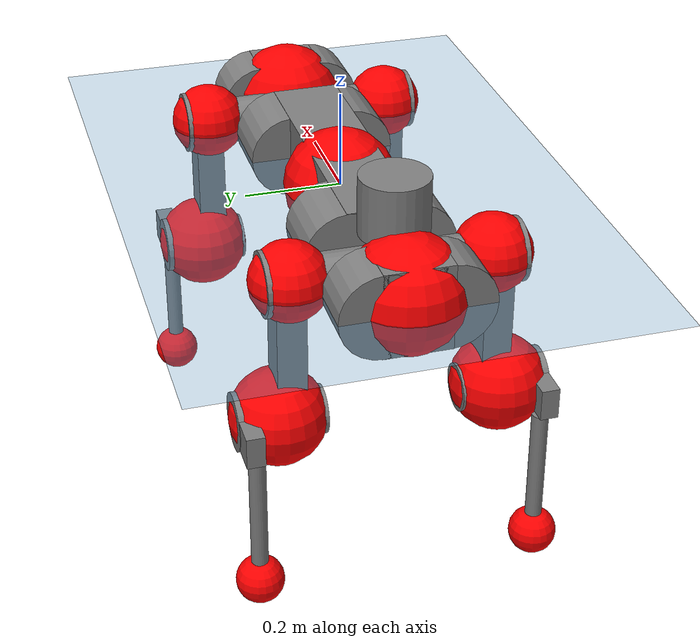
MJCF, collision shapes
<mujoco model="anymal_c">
  <compiler angle="radian" assetdir="assets" balanceinertia="true" inertiafromgeom="false"/>

  <option timestep="0.005" density="1.2" viscosity="2e-05"/>

  <size nkey="1"/>

  <visual>
    <quality shadowsize="8192"/>
    <map shadowclip="0.5"/>
  </visual>

  <default>
    <default class="/">
      <material specular="0" shininess="0.25"/>
      <geom contype="0" conaffinity="0" group="1" solref="-1000 -80"/>
      <site size="0.01 0.005 0.005" group="5"/>
      <general forcelimited="true" forcerange="-80 80" biastype="affine" gainprm="80" biasprm="0 -80 -2"/>
      <default class="anymal_c">
        <joint armature="0.01" damping="0.01" frictionloss="0.1"/>
        <default class="visual">
          <geom type="mesh" group="2"/>
          <default class="visual_zflip"/>
        </default>
        <default class="collision">
          <geom type="cylinder" group="3"/>
          <default class="foot">
            <geom size="0.03 0 0" type="sphere" condim="6" priority="1" friction="0.8 0.02 0.01" solimp="0.015 1 0.03"/>
          </default>
        </default>
      </default>
      <default class="reward_collision_sphere">
        <geom group="5" rgba="1 0 0 1"/>
      </default>
    </default>
  </default>

  <asset>
    <texture type="skybox" colorspace="auto" name="//unnamed_texture_0" builtin="gradient" rgb1="0.95 0.95 0.95" rgb2="0.95 0.95 0.95" width="100" height="600"/>
    <texture type="2d" colorspace="auto" name="texplane" builtin="checker" rgb1="0.345 0.575 0.748" rgb2="0.345 0.575 0.748" markrgb="1 1 1" width="512" height="512"/>
    <texture type="2d" colorspace="linear" name="base" file="base.png"/>
    <texture type="2d" colorspace="linear" name="top_shell" file="top_shell.png"/>
    <texture type="2d" colorspace="linear" name="bottom_shell" file="bottom_shell.png"/>
    <texture type="2d" colorspace="linear" name="remote" file="remote.png"/>
    <texture type="2d" colorspace="linear" name="hatch" file="hatch.png"/>
    <texture type="2d" colorspace="linear" name="handle" file="handle.png"/>
    <texture type="2d" colorspace="linear" name="face" file="face.png"/>
    <texture type="2d" colorspace="linear" name="battery" file="battery.png"/>
    <texture type="2d" colorspace="linear" name="lidar_cage" file="lidar_cage.png"/>
    <texture type="2d" colorspace="linear" name="depth_camera" file="depth_camera.png"/>
    <texture type="2d" colorspace="linear" name="wide_angle_camera" file="wide_angle_camera.png"/>
    <texture type="2d" colorspace="linear" name="lidar" file="lidar.png"/>
    <texture type="2d" colorspace="linear" name="drive" file="drive.png"/>
    <texture type="2d" colorspace="linear" name="hip_l" file="hip_l.png"/>
    <texture type="2d" colorspace="linear" name="shank_l" file="shank_l.png"/>
    <texture type="2d" colorspace="linear" name="foot" file="foot.png"/>
    <texture type="2d" colorspace="linear" name="thigh" file="thigh.png"/>
    <texture type="2d" colorspace="linear" name="shank_r" file="shank_r.png"/>
    <texture type="2d" colorspace="linear" name="hip_r" file="hip_r.png"/>
    <material name="MatPlane" class="/" texture="texplane" texuniform="true" texrepeat="2 2" specular="0.9" shininess="0.5"/>
    <material name="black_plastic" class="/" rgba="0.007 0.007 0.007 1"/>
    <material name="green" class="/" rgba="0.052 0.178 0.033 1"/>
    <material name="red" class="/" rgba="0.178 0.006 0.005 1"/>
    <material name="yellow" class="/" rgba="0.178 0.119 0.006 1"/>
    <material name="lwl" class="/" rgba="0.8 0.8 0.8 1"/>
    <material name="base" class="/" texture="base"/>
    <material name="top_shell" class="/" texture="top_shell"/>
    <material name="bottom_shell" class="/" texture="bottom_shell"/>
    <material name="hip_l" class="/" texture="hip_l"/>
    <material name="thigh" class="/" texture="thigh"/>
    <material name="shank_l" class="/" texture="shank_l"/>
    <material name="foot" class="/" texture="foot"/>
    <material name="hip_r" class="/" texture="hip_r"/>
    <material name="shank" class="/" texture="shank_r"/>
    <material name="hatch" class="/" texture="hatch"/>
    <material name="remote" class="/" texture="remote"/>
    <material name="handle" class="/" texture="handle"/>
    <material name="face" class="/" texture="face"/>
    <material name="depth_camera" class="/" texture="depth_camera"/>
    <material name="wide_angle_camera" class="/" texture="wide_angle_camera"/>
    <material name="battery" class="/" texture="battery"/>
    <material name="lidar_cage" class="/" texture="lidar_cage"/>
    <material name="lidar" class="/" texture="lidar"/>
    <material name="drive" class="/" texture="drive"/>
    <mesh name="base_0" class="/" file="base_0.obj"/>
    <mesh name="base_1" class="/" file="base_1.obj"/>
    <mesh name="base_2" class="/" file="base_2.obj"/>
    <mesh name="base_3" class="/" file="base_3.obj"/>
    <mesh name="base_4" class="/" file="base_4.obj"/>
    <mesh name="base_5" class="/" file="base_5.obj"/>
    <mesh name="top_shell" class="/" file="top_shell.obj"/>
    <mesh name="bottom_shell" class="/" file="bottom_shell.obj"/>
    <mesh name="remote" class="/" file="remote.obj"/>
    <mesh name="handle" class="/" file="handle.obj"/>
    <mesh name="face" class="/" file="face.obj"/>
    <mesh name="wide_angle_camera" class="/" file="wide_angle_camera.obj"/>
    <mesh name="depth_camera" class="/" file="depth_camera.obj"/>
    <mesh name="battery" class="/" file="battery.obj"/>
    <mesh name="lidar_cage" class="/" file="lidar_cage.obj"/>
    <mesh name="lidar" class="/" file="lidar.obj"/>
    <mesh name="drive" class="/" file="drive.obj"/>
    <mesh name="hip_l" class="/" file="hip_l.obj"/>
    <mesh name="thigh" class="/" file="thigh.obj"/>
    <mesh name="shank_l" class="/" file="shank_l.obj"/>
    <mesh name="foot" class="/" file="foot.obj"/>
    <mesh name="hip_r" class="/" file="hip_r.obj"/>
    <mesh name="hatch" class="/" file="hatch.obj"/>
    <mesh name="shank_r" class="/" file="shank_r.obj"/>
  </asset>

  <worldbody>
    <geom name="floor" class="/" size="100 100 0.125" type="plane" group="0" material="MatPlane"/>
    <light name="toplight_shadow" class="/" pos="0 0 5" dir="0.0990148 0.0990148 -0.990148" type="directional" ambient="0.04 0.04 0.04" diffuse="0.55 0.55 0.55" specular="0.12 0.12 0.12"/>
    <light name="toplight_fill" class="/" pos="0 0 5" dir="0.0990148 0.0990148 -0.990148" type="directional" castshadow="false" ambient="0.04 0.04 0.04" diffuse="0.3 0.3 0.3" specular="0.08 0.08 0.08"/>
    <body name="trunk" childclass="anymal_c" pos="0.000317009 -0.000417562 0.00100175" quat="1 0.00014211 -5.80016e-05 0.000164284">
      <inertial pos="0.00242465 -0.00244208 0.0517893" quat="0.500541 0.499482 0.499329 0.500646" mass="17.7908" diaginertia="0.570285 0.372825 0.275632"/>
      <joint name="//unnamed_joint_0" type="free" armature="0" damping="0" frictionloss="0"/>
      <geom name="//unnamed_geom_1" class="visual" material="green" mesh="base_0"/>
      <geom name="//unnamed_geom_2" class="visual" material="yellow" mesh="base_1"/>
      <geom name="//unnamed_geom_3" class="visual" material="red" mesh="base_2"/>
      <geom name="//unnamed_geom_4" class="visual" material="black_plastic" mesh="base_3"/>
      <geom name="//unnamed_geom_5" class="visual" material="lwl" mesh="base_4"/>
      <geom name="//unnamed_geom_6" class="visual" material="base" mesh="base_5"/>
      <geom name="trunk_1" class="collision" size="0.285243 0.0688517 0.0885236" type="box"/>
      <geom name="trunk_2" class="collision" size="0.0885236 0.0713107" pos="0.215188 0.063667 0" quat="0.707107 0 0.707107 0"/>
      <geom name="trunk_3" class="collision" size="0.0885236 0.0713107" pos="-0.215188 0.063667 0" quat="0.707107 0 0.707107 0"/>
      <geom name="trunk_4" class="collision" size="0.0885236 0.0713107" pos="0.215188 -0.063667 0" quat="0.707107 0 0.707107 0"/>
      <geom name="trunk_5" class="collision" size="0.0885236 0.0713107" pos="-0.215188 -0.063667 0" quat="0.707107 0 0.707107 0"/>
      <geom name="//unnamed_geom_12" class="visual" material="top_shell" mesh="top_shell"/>
      <geom name="//unnamed_geom_13" class="visual" material="bottom_shell" mesh="bottom_shell"/>
      <geom name="//unnamed_geom_14" class="visual" material="remote" mesh="remote"/>
      <geom name="//unnamed_geom_15" class="visual" material="handle" mesh="handle"/>
      <geom name="//unnamed_geom_16" class="visual" pos="0.410093 0 0" quat="1 0 0 0" material="face" mesh="face"/>
      <geom name="trunk_6" class="collision" size="0.0540977 0.0688517 0.0885236" pos="0.464509 0 0" type="box"/>
      <geom name="//unnamed_geom_18" class="collision" size="0.0885236 0.0540977" pos="0.464509 0.063667 0" quat="0.707107 0 0.707107 0"/>
      <geom name="//unnamed_geom_19" class="collision" size="0.0885236 0.0540977" pos="0.464509 -0.063667 0" quat="0.707107 0 0.707107 0"/>
      <geom name="//unnamed_geom_20" class="visual" pos="0.456745 0 -0.0311903" quat="0.965926 0 0.258819 0" material="depth_camera" mesh="depth_camera"/>
      <geom name="//unnamed_geom_21" class="visual" pos="0.507546 0 0.0157468" material="wide_angle_camera" mesh="wide_angle_camera"/>
      <geom name="//unnamed_geom_22" class="visual_zflip" pos="-0.410093 0 0" quat="0 0 0 1" material="face" mesh="face"/>
      <geom name="trunk_7" class="collision" size="0.0540977 0.0688517 0.0885236" pos="-0.464509 0 0" quat="0 0 0 1" type="box"/>
      <geom name="//unnamed_geom_24" class="collision" size="0.0885236 0.0540977" pos="-0.464509 -0.063667 0" quat="0 -0.707107 0 0.707107"/>
      <geom name="//unnamed_geom_25" class="collision" size="0.0885236 0.0540977" pos="-0.464509 0.063667 0" quat="0 -0.707107 0 0.707107"/>
      <geom name="//unnamed_geom_26" class="visual" pos="-0.456745 0 -0.0311903" quat="0 -0.258819 0 0.965926" material="depth_camera" mesh="depth_camera"/>
      <geom name="//unnamed_geom_27" class="visual_zflip" pos="-0.507546 0 0.0157468" quat="0 0 0 1" material="wide_angle_camera" mesh="wide_angle_camera"/>
      <geom name="//unnamed_geom_28" class="visual" material="battery" mesh="battery"/>
      <geom name="//unnamed_geom_29" class="visual" pos="0 0.0684975 0.0300822" quat="0.683013 -0.183013 0.183013 0.683013" material="depth_camera" mesh="depth_camera"/>
      <geom name="//unnamed_geom_30" class="visual" pos="0 -0.0684975 0.0300822" quat="0.683013 0.183013 0.183013 -0.683013" material="depth_camera" mesh="depth_camera"/>
      <geom name="//unnamed_geom_31" class="visual" pos="-0.36013 0 0.0773138" quat="1 0 0 0" material="lidar_cage" mesh="lidar_cage"/>
      <geom name="trunk_8" class="collision" size="0.0688517 0.0590157" pos="-0.36013 0 0.140427"/>
      <geom name="//unnamed_geom_33" class="visual" pos="-0.36013 -3.1367e-05 0.149579" quat="0.707107 0 0 -0.707107" material="lidar" mesh="lidar"/>
      <geom name="//unnamed_geom_34" class="visual" pos="0.296712 0.0946415 -2.45573e-09" quat="0.258819 0.965926 0 0" material="drive" mesh="drive"/>
      <geom name="//unnamed_geom_35" class="visual" pos="0.296712 -0.0946415 2.45573e-09" quat="0.258819 -0.965926 0 0" material="drive" mesh="drive"/>
      <geom name="//unnamed_geom_36" class="visual" pos="-0.296712 0.0946415 2.45573e-09" quat="0 0 0.965926 -0.258819" material="drive" mesh="drive"/>
      <geom name="//unnamed_geom_37" class="visual" pos="-0.296712 -0.0946415 -2.45573e-09" quat="0 0 -0.965926 -0.258819" material="drive" mesh="drive"/>
      <geom name="//unnamed_geom_38" class="visual" pos="0.114767 0 0.0767879" quat="1 0 0 0" material="hatch" mesh="hatch"/>
      <geom name="//unnamed_geom_39" class="reward_collision_sphere" size="0.118031"/>
      <geom name="//unnamed_geom_40" class="reward_collision_sphere" size="0.118031" pos="0.445216 0 0"/>
      <geom name="//unnamed_geom_41" class="reward_collision_sphere" size="0.118031" pos="-0.445216 0 0"/>
      <site name="imu" pos="0.24361 0.00975485 0.0507978" size="0.00983595"/>
      <camera name="track" pos="0 -1.81906 0" quat="0.707107 0.707107 0 0" mode="trackcom"/>
      <camera name="ego_camera" pos="0.445216 0 -0.0420755" quat="-0.5 -0.5 0.5 0.5"/>
      <body name="LF_HIP" pos="0.297617 0.0949196 -0.000496417" quat="0.259086 0.965854 9.30517e-05 2.28147e-05">
        <inertial pos="0.0560514 -0.0149523 -0.00848545" quat="-0.12296 0.704505 -0.144427 0.683882" mass="2.62734" diaginertia="0.00548723 0.00307305 0.00419783"/>
        <joint name="LF_HAA" pos="0 0 0" axis="0.999996 -0.00288681 -0.000114609" range="-0.70887 0.495658" armature="0.00956429" damping="0.0120825" frictionloss="0.099818"/>
        <geom name="//unnamed_geom_42" class="visual" pos="0 -0.000144459 2.37273e-05" quat="0.258819 -0.965926 0 0" material="hip_l" mesh="hip_l"/>
        <geom name="//unnamed_geom_43" class="visual" pos="0.0592632 -0.0708093 -0.0419347" quat="0.183013 -0.683013 0.683013 0.183013" material="drive" mesh="drive"/>
        <geom name="//unnamed_geom_44" class="collision" size="0.0491798 0.0688517" pos="0.0592632 -0.0108778 -0.00726329" quat="-0.353553 -0.612372 0.612372 -0.353553"/>
        <body name="LF_THIGH" pos="0.0610765 -0.0670942 -0.0456471" quat="0.183902 -0.683348 0.682373 0.183254">
          <inertial pos="0.0310017 0.00251762 -0.258354" quat="0.992905 -0.00612025 -0.0790267 0.0886372" mass="2.89542" diaginertia="0.0279187 0.0190782 0.00536238"/>
          <joint name="LF_HFE" pos="0 0 0" axis="0.99999 0.0042362 -0.00126052" range="-3.15657 3.09577" armature="0.0110266" damping="0.00941464" frictionloss="0.0998136"/>
          <geom name="//unnamed_geom_45" class="visual" pos="0.0015885 2.50311e-06 0" quat="0.707107 0 0 -0.707107" material="thigh" mesh="thigh"/>
          <geom name="//unnamed_geom_46" class="collision" size="0.0639337 0.0393438" pos="0.0395747 0 0" quat="0.5 0.5 -0.5 -0.5"/>
          <geom name="//unnamed_geom_47" class="collision" size="0.0368848 0.0295079 0.138996" pos="0.0296811 0 -0.148647" quat="0.707107 0 0 -0.707107" type="box"/>
          <geom name="//unnamed_geom_48" class="visual" pos="0.0992337 0 -0.299788" quat="1 0 0 0" material="drive" mesh="drive"/>
          <geom name="//unnamed_geom_49" class="collision" size="0.0491798 0.0688517" pos="0.0299779 0 -0.299788" quat="0.707107 0 0.707107 0"/>
          <geom name="//unnamed_geom_50" class="reward_collision_sphere" size="0.0786876" pos="0.0247342 0 0"/>
          <body name="LF_SHANK" pos="0.0995042 -0.000269649 -0.299229" quat="1 -0.000246886 0.000220998 9.92574e-05">
            <inertial pos="0.00352111 -0.0557798 -0.0862468" quat="0.992665 -0.118851 0.0015192 -0.0220901" mass="0.551473" diaginertia="0.0095968 0.00588798 0.00142908"/>
            <joint name="LF_KFE" pos="0 0 0" axis="0.999999 0.00159265 0.000515945" range="-3.09162 3.1638" armature="0.0100198" damping="0" frictionloss="0.093293"/>
            <geom name="//unnamed_geom_51" class="visual" pos="0.000517977 0.00276188 0" quat="0.707107 0 0 -0.707107" material="shank_l" mesh="shank_l"/>
            <geom name="LF_kfe_act" class="collision" size="0.0590157 0.0196719" pos="0.0197874 0 0" quat="0.5 0.5 -0.5 -0.5"/>
            <geom name="//unnamed_geom_53" class="collision" size="0.0565557 0.0331963 0.0186883" pos="0.0197874 -0.052297 0" quat="0.5 0.5 -0.5 -0.5" type="box"/>
            <geom name="//unnamed_geom_54" class="visual" pos="0.0129111 -0.079103 -0.355507" quat="0.382683 0 0 -0.92388" material="foot" mesh="foot"/>
            <geom name="LF_calf" class="collision" size="0.0172129 0.138935" pos="0.0129113 -0.079993 -0.177753" quat="0.707107 0 0 -0.707107"/>
            <geom name="LF_foot" class="foot" size="0.0305572" pos="0.0129113 -0.079993 -0.331839" quat="0.707107 0 0 -0.707107"/>
            <geom name="//unnamed_geom_57" class="reward_collision_sphere" size="0.0983595" pos="-0.0494684 0 0"/>
            <geom name="//unnamed_geom_58" class="reward_collision_sphere" size="0.0491798" pos="0.0129113 -0.079993 -0.331839"/>
            <site name="LF_foot" class="foot" pos="0.0129113 -0.079993 -0.331839" quat="0.707107 0 0 -0.707107" size="0.00983595"/>
          </body>
        </body>
      </body>
      <body name="RF_HIP" pos="0.294884 -0.0942243 -0.00247014" quat="0.258735 -0.965948 0.000355369 -0.000349491">
        <inertial pos="0.0559028 0.0133071 -0.00808174" quat="0.141406 0.683831 0.125165 0.704779" mass="2.66987" diaginertia="0.00548722 0.00305964 0.00416796"/>
        <joint name="RF_HAA" pos="0 0 0" axis="1 0.000311073 -0.000716634" range="-0.482185 0.757605" armature="0.0102598" damping="0.0138059" frictionloss="0.0937869"/>
        <geom name="//unnamed_geom_59" class="visual" pos="0 0.000144458 2.37273e-05" quat="0.258819 0.965926 0 0" material="hip_r" mesh="hip_r"/>
        <geom name="//unnamed_geom_60" class="visual" pos="0.0592632 0.0708093 -0.0419347" quat="0.183013 0.683013 0.683013 -0.183013" material="drive" mesh="drive"/>
        <geom name="//unnamed_geom_61" class="collision" size="0.0491798 0.0688517" pos="0.0592632 0.0108778 -0.00726329" quat="-0.353553 0.612372 0.612372 0.353553"/>
        <body name="RF_THIGH" pos="0.0605103 0.0679768 -0.046488" quat="0.182983 0.682999 0.683036 -0.183008">
          <inertial pos="0.0300662 -0.000393071 -0.256028" quat="0.993214 -0.00671228 -0.080372 0.0837916" mass="2.88226" diaginertia="0.0284754 0.0185707 0.00537997"/>
          <joint name="RF_HFE" pos="0 0 0" axis="0.999986 -0.0024855 0.00461361" stiffness="0.0145143" range="-3.13853 3.11835" armature="0.00896735" damping="0.0188257" frictionloss="0.0978643"/>
          <geom name="//unnamed_geom_62" class="visual" pos="0.0015885 2.50311e-06 0" quat="0.707107 0 0 -0.707107" material="thigh" mesh="thigh"/>
          <geom name="//unnamed_geom_63" class="collision" size="0.0639337 0.0393438" pos="0.0395747 0 0" quat="0.5 0.5 0.5 0.5"/>
          <geom name="//unnamed_geom_64" class="collision" size="0.0368848 0.0295079 0.138996" pos="0.0296811 0 -0.148647" quat="0.707107 0 0 0.707107" type="box"/>
          <geom name="//unnamed_geom_65" class="visual" pos="0.0992337 0 -0.299788" quat="1 0 0 0" material="drive" mesh="drive"/>
          <geom name="//unnamed_geom_66" class="collision" size="0.0491798 0.0688517" pos="0.0299779 0 -0.299788" quat="0.707107 0 0.707107 0"/>
          <geom name="//unnamed_geom_67" class="reward_collision_sphere" size="0.0786876" pos="0.0247342 0 0"/>
          <body name="RF_SHANK" pos="0.10051 -0.000772473 -0.297743" quat="1 0.000189454 6.67523e-05 -0.000127302">
            <inertial pos="0.00557793 0.0561252 -0.084413" quat="0.993023 0.114129 -0.000918217 0.0296485" mass="0.577282" diaginertia="0.0100473 0.0059728 0.00148462"/>
            <joint name="RF_KFE" pos="0 0 0" axis="0.999997 -0.00166479 0.00161441" range="-3.15548 3.11992" armature="0.00981934" damping="0" frictionloss="0.103395"/>
            <geom name="//unnamed_geom_68" class="visual" pos="0.000517974 -0.00276187 0" quat="0.707107 0 0 0.707107" material="shank" mesh="shank_r"/>
            <geom name="RF_kfe_act" class="collision" size="0.0590157 0.0196719" pos="0.0197874 0 0" quat="0.5 0.5 0.5 0.5"/>
            <geom name="//unnamed_geom_70" class="collision" size="0.0565557 0.0331963 0.0186883" pos="0.0197874 0.052297 0" quat="0.5 0.5 0.5 0.5" type="box"/>
            <geom name="//unnamed_geom_71" class="visual" pos="0.0129114 0.079103 -0.355507" quat="0.382683 0 0 0.92388" material="foot" mesh="foot"/>
            <geom name="RF_calf" class="collision" size="0.0172129 0.138935" pos="0.0129113 0.079993 -0.177753" quat="0.707107 0 0 0.707107"/>
            <geom name="RF_foot" class="foot" size="0.0264864" pos="0.0129113 0.079993 -0.331839" quat="0.707107 0 0 0.707107"/>
            <geom name="//unnamed_geom_74" class="reward_collision_sphere" size="0.0983595" pos="-0.0494684 0 0"/>
            <geom name="//unnamed_geom_75" class="reward_collision_sphere" size="0.0491798" pos="0.0129113 0.079993 -0.331839"/>
            <site name="RF_foot" class="foot" pos="0.0129113 0.079993 -0.331839" quat="0.707107 0 0 0.707107" size="0.00983595"/>
          </body>
        </body>
      </body>
      <body name="LH_HIP" pos="-0.296295 0.0944087 0.00100364" quat="-0.000134437 0.000128016 0.966018 -0.258473">
        <inertial pos="0.0558319 0.014406 -0.00878623" quat="0.133433 0.681029 0.128795 0.708384" mass="2.59642" diaginertia="0.00564635 0.00312343 0.00427776"/>
        <joint name="LH_HAA" pos="0 0 0" axis="0.999981 0.00465904 0.00401108" range="-0.463639 0.743305" armature="0.0101101" damping="0.0100567" frictionloss="0.103815"/>
        <geom name="//unnamed_geom_76" class="visual" pos="0 0.000144458 2.37273e-05" quat="-0.258819 -0.965926 0 0" material="hip_r" mesh="hip_r"/>
        <geom name="//unnamed_geom_77" class="visual" pos="0.0592632 0.0708093 -0.0419347" quat="0.183013 0.683013 0.683013 -0.183013" material="drive" mesh="drive"/>
        <geom name="//unnamed_geom_78" class="collision" size="0.0491798 0.0688517" pos="0.0592632 0.0108778 -0.00726329" quat="-0.353553 0.612372 0.612372 0.353553"/>
        <body name="LH_THIGH" pos="0.05869 0.0673501 -0.043939" quat="0.183758 0.682591 0.68346 -0.182169">
          <inertial pos="0.0307152 0.0024167 -0.259326" quat="0.992975 -0.006514 -0.0829956 0.0840809" mass="2.84191" diaginertia="0.0288489 0.0185903 0.00552383"/>
          <joint name="LH_HFE" pos="0 0 0" axis="0.999924 0.00977908 -0.00746796" stiffness="0.000392301" range="-3.14691 3.13407" armature="0.00998545" damping="0.014149" frictionloss="0.0996504"/>
          <geom name="//unnamed_geom_79" class="visual" pos="0.0015885 2.50311e-06 0" quat="0.707107 0 0 -0.707107" material="thigh" mesh="thigh"/>
          <geom name="//unnamed_geom_80" class="collision" size="0.0639337 0.0393438" pos="0.0395747 0 0" quat="0.5 0.5 -0.5 -0.5"/>
          <geom name="//unnamed_geom_81" class="collision" size="0.0368848 0.0295079 0.138996" pos="0.0296811 0 -0.148647" quat="0.707107 0 0 -0.707107" type="box"/>
          <geom name="//unnamed_geom_82" class="visual" pos="0.0992337 0 -0.299788" quat="1 0 0 0" material="drive" mesh="drive"/>
          <geom name="//unnamed_geom_83" class="collision" size="0.0491798 0.0688517" pos="0.0299779 0 -0.299788" quat="0.707107 0 0.707107 0"/>
          <geom name="//unnamed_geom_84" class="reward_collision_sphere" size="0.0786876" pos="0.0247342 0 0"/>
          <body name="LH_SHANK" pos="0.100021 -0.00164216 -0.300219" quat="1 0.000352098 -0.000181054 0.000247822">
            <inertial pos="0.00524813 0.0570047 -0.085392" quat="0.992907 0.115597 -0.00195231 0.0277467" mass="0.566731" diaginertia="0.00954353 0.00568659 0.00142021"/>
            <joint name="LH_KFE" pos="0 0 0" axis="1 -0.000330949 -0.000899339" stiffness="0.00113948" range="-3.09786 3.14041" armature="0.0110295" damping="0.0122789" frictionloss="0.097165"/>
            <geom name="//unnamed_geom_85" class="visual" pos="0.000517974 -0.00276187 0" quat="-0.707107 0 0 -0.707107" material="shank" mesh="shank_r"/>
            <geom name="LH_kfe_act" class="collision" size="0.0590157 0.0196719" pos="0.0197874 0 0" quat="0.5 0.5 -0.5 -0.5"/>
            <geom name="//unnamed_geom_87" class="collision" size="0.0565557 0.0331963 0.0186883" pos="0.0197874 0.052297 0" quat="0.5 0.5 -0.5 -0.5" type="box"/>
            <geom name="//unnamed_geom_88" class="visual" pos="0.0129114 0.079103 -0.355507" quat="-0.382683 0 0 -0.92388" material="foot" mesh="foot"/>
            <geom name="LH_calf" class="collision" size="0.0172129 0.138935" pos="0.0129113 0.079993 -0.177753" quat="0.707107 0 0 -0.707107"/>
            <geom name="LH_foot" class="foot" size="0.0303386" pos="0.0129113 0.079993 -0.331839" quat="0.707107 0 0 -0.707107"/>
            <geom name="//unnamed_geom_91" class="reward_collision_sphere" size="0.0983595" pos="-0.0494684 0 0"/>
            <geom name="//unnamed_geom_92" class="reward_collision_sphere" size="0.0491798" pos="0.0129113 0.079993 -0.331839"/>
            <site name="LH_foot" class="foot" pos="0.0129113 0.079993 -0.331839" quat="0.707107 0 0 -0.707107" size="0.00983595"/>
          </body>
        </body>
      </body>
      <body name="RH_HIP" pos="-0.299008 -0.0956981 2.53978e-05" quat="0.00062341 -0.000214803 -0.96624 -0.257643">
        <inertial pos="0.0564737 -0.0130474 -0.00899117" quat="-0.127513 0.709092 -0.136532 0.679917" mass="2.66927" diaginertia="0.00560053 0.00304481 0.00440142"/>
        <joint name="RH_HAA" pos="0 0 0" axis="0.999992 0.00178369 0.00353281" range="-0.712802 0.504792" armature="0.0108234" damping="0.00909644" frictionloss="0.0986561"/>
        <geom name="//unnamed_geom_93" class="visual" pos="0 -0.000144459 2.37273e-05" quat="-0.258819 0.965926 0 0" material="hip_l" mesh="hip_l"/>
        <geom name="//unnamed_geom_94" class="visual" pos="0.0592632 -0.0708093 -0.0419347" quat="-0.183013 0.683013 -0.683013 -0.183013" material="drive" mesh="drive"/>
        <geom name="//unnamed_geom_95" class="collision" size="0.0491798 0.0688517" pos="0.0592632 -0.0108778 -0.00726329" quat="0.353553 0.612372 -0.612372 0.353553"/>
        <body name="RH_THIGH" pos="0.0586733 -0.0649021 -0.0440924" quat="-0.183528 0.682906 -0.682937 -0.183177">
          <inertial pos="0.0304969 -0.00108816 -0.258733" quat="0.993135 -0.00545093 -0.0807585 0.0844492" mass="2.86251" diaginertia="0.0282761 0.0186712 0.00532247"/>
          <joint name="RH_HFE" pos="0 0 0" axis="0.999998 0.00128363 0.00155662" stiffness="0.00136356" range="-3.12976 3.19246" armature="0.00869235" damping="0.015374" frictionloss="0.0958054"/>
          <geom name="//unnamed_geom_96" class="visual" pos="0.0015885 2.50311e-06 0" quat="0.707107 0 0 -0.707107" material="thigh" mesh="thigh"/>
          <geom name="//unnamed_geom_97" class="collision" size="0.0639337 0.0393438" pos="0.0395747 0 0" quat="0.5 0.5 0.5 0.5"/>
          <geom name="//unnamed_geom_98" class="collision" size="0.0368848 0.0295079 0.138996" pos="0.0296811 0 -0.148647" quat="0.707107 0 0 0.707107" type="box"/>
          <geom name="//unnamed_geom_99" class="visual" pos="0.0992337 0 -0.299788" quat="1 0 0 0" material="drive" mesh="drive"/>
          <geom name="//unnamed_geom_100" class="collision" size="0.0491798 0.0688517" pos="0.0299779 0 -0.299788" quat="0.707107 0 0.707107 0"/>
          <geom name="//unnamed_geom_101" class="reward_collision_sphere" size="0.0786876" pos="0.0247342 0 0"/>
          <body name="RH_SHANK" pos="0.0987684 0.000415968 -0.300043" quat="1 0.000135523 -0.000156433 7.8052e-05">
            <inertial pos="0.00575501 -0.055794 -0.0847813" quat="0.992932 -0.115957 -0.000971188 -0.0252905" mass="0.563185" diaginertia="0.00952867 0.0057085 0.00143292"/>
            <joint name="RH_KFE" pos="0 0 0" axis="0.999999 -0.00084585 0.00103113" range="-3.08513 3.1224" armature="0.0094993" damping="0.0108372" frictionloss="0.0967772"/>
            <geom name="//unnamed_geom_102" class="visual" pos="0.000517977 0.00276188 0" quat="0.707107 0 0 -0.707107" material="shank_l" mesh="shank_l"/>
            <geom name="RH_kfe_act" class="collision" size="0.0590157 0.0196719" pos="0.0197874 0 0" quat="0.5 0.5 0.5 0.5"/>
            <geom name="//unnamed_geom_104" class="collision" size="0.0565557 0.0331963 0.0186883" pos="0.0197874 -0.052297 0" quat="0.5 0.5 0.5 0.5" type="box"/>
            <geom name="//unnamed_geom_105" class="visual" pos="0.0129111 -0.079103 -0.355507" quat="0.382683 0 0 -0.92388" material="foot" mesh="foot"/>
            <geom name="RH_calf" class="collision" size="0.0172129 0.138935" pos="0.0129113 -0.079993 -0.177753" quat="0.707107 0 0 0.707107"/>
            <geom name="RH_foot" class="foot" size="0.0298906" pos="0.0129113 -0.079993 -0.331839" quat="0.707107 0 0 0.707107"/>
            <geom name="//unnamed_geom_108" class="reward_collision_sphere" size="0.0983595" pos="-0.0494684 0 0"/>
            <geom name="//unnamed_geom_109" class="reward_collision_sphere" size="0.0491798" pos="0.0129113 -0.079993 -0.331839"/>
            <site name="RH_foot" class="foot" pos="0.0129113 -0.079993 -0.331839" quat="0.707107 0 0 0.707107" size="0.00983595"/>
          </body>
        </body>
      </body>
    </body>
  </worldbody>

  <contact>
    <pair class="/" geom1="floor" geom2="LF_foot" name="//unnamed_contact_0"/>
    <pair class="/" geom1="floor" geom2="RF_foot" name="//unnamed_contact_1"/>
    <pair class="/" geom1="floor" geom2="LH_foot" name="//unnamed_contact_2"/>
    <pair class="/" geom1="floor" geom2="RH_foot" name="//unnamed_contact_3"/>
  </contact>

  <actuator>
    <general name="LF_HAA" class="/" joint="LF_HAA" forcerange="-78.0607 78.0607" gainprm="79.7933" biasprm="0 -79.7933 -1.89356"/>
    <general name="LF_HFE" class="/" joint="LF_HFE" forcerange="-78.9356 78.9356" gainprm="79.7933" biasprm="0 -79.7933 -1.89356"/>
    <general name="LF_KFE" class="/" joint="LF_KFE" forcerange="-80.6143 80.6143" gainprm="79.7933" biasprm="0 -79.7933 -1.89356"/>
    <general name="RF_HAA" class="/" joint="RF_HAA" forcerange="-81.3151 81.3151" gainprm="79.7933" biasprm="0 -79.7933 -1.89356"/>
    <general name="RF_HFE" class="/" joint="RF_HFE" forcerange="-80.1264 80.1264" gainprm="79.7933" biasprm="0 -79.7933 -1.89356"/>
    <general name="RF_KFE" class="/" joint="RF_KFE" forcerange="-76.3582 76.3582" gainprm="79.7933" biasprm="0 -79.7933 -1.89356"/>
    <general name="LH_HAA" class="/" joint="LH_HAA" forcerange="-81.7178 81.7178" gainprm="79.7933" biasprm="0 -79.7933 -1.89356"/>
    <general name="LH_HFE" class="/" joint="LH_HFE" forcerange="-78.56 78.56" gainprm="79.7933" biasprm="0 -79.7933 -1.89356"/>
    <general name="LH_KFE" class="/" joint="LH_KFE" forcerange="-76.2253 76.2253" gainprm="79.7933" biasprm="0 -79.7933 -1.89356"/>
    <general name="RH_HAA" class="/" joint="RH_HAA" forcerange="-81.5177 81.5177" gainprm="79.7933" biasprm="0 -79.7933 -1.89356"/>
    <general name="RH_HFE" class="/" joint="RH_HFE" forcerange="-76.0606 76.0606" gainprm="79.7933" biasprm="0 -79.7933 -1.89356"/>
    <general name="RH_KFE" class="/" joint="RH_KFE" forcerange="-84.6766 84.6766" gainprm="79.7933" biasprm="0 -79.7933 -1.89356"/>
  </actuator>

  <sensor>
    <gyro site="imu" name="imu_angular_velocity"/>
    <velocimeter site="imu" name="imu_linear_velocity"/>
    <framelinvel objtype="site" objname="LF_foot" name="LF_foot_global_linear_velocity"/>
    <framelinvel objtype="site" objname="RF_foot" name="RF_foot_global_linear_velocity"/>
    <framelinvel objtype="site" objname="LH_foot" name="LH_foot_global_linear_velocity"/>
    <framelinvel objtype="site" objname="RH_foot" name="RH_foot_global_linear_velocity"/>
  </sensor>

  <keyframe>
    <key name="home" qpos="0 0 0.55 1 0 0 0 0 0.4 -0.8 0 -0.4 0.8 0 -0.4 0.8 0 0.4 -0.8"/>
  </keyframe>
</mujoco>
